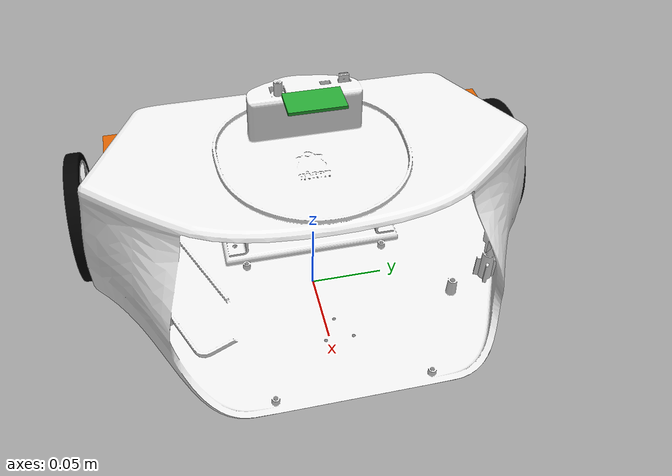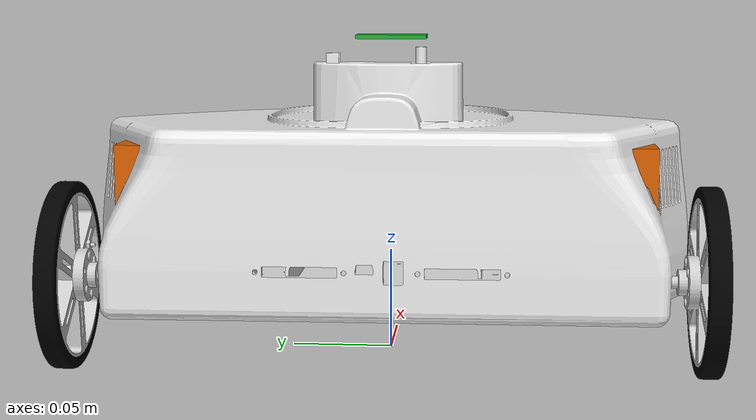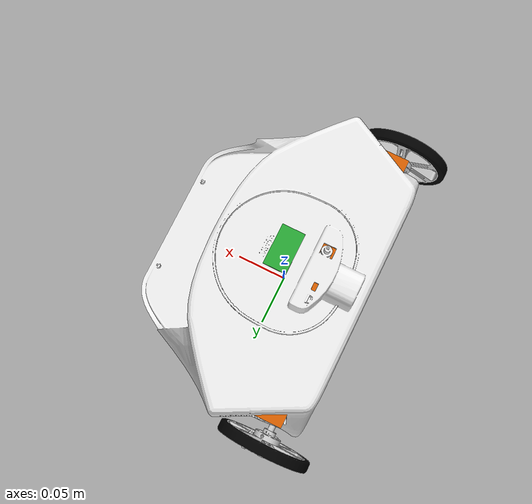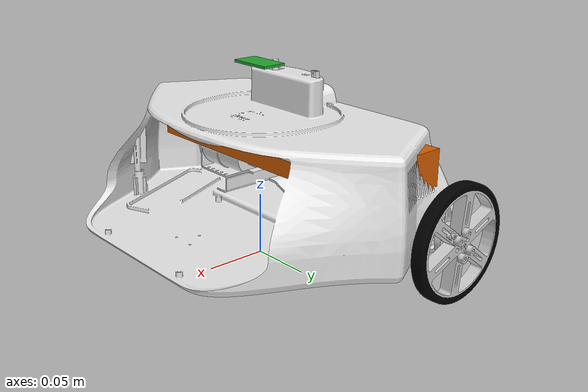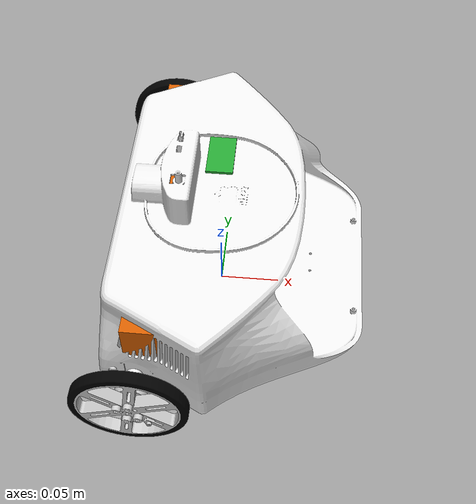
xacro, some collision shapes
<?xml version="1.0"?>

<robot name="botmovil"
    xmlns:sensor="http://playerstage.sourceforge.net/gazebo/xmlschema/#sensor"
    xmlns:controller="http://playerstage.sourceforge.net/gazebo/xmlschema/#controller"
    xmlns:interface="http://playerstage.sourceforge.net/gazebo/xmlschema/#interface">

    <!-- Included URDF Files -->
    <include filename="$(find botmovil_description)/urdf/botmovil_base.xacro" />
    <include filename="$(find botmovil_description)/urdf/botmovil_kinect_link.urdf.xacro" />

    <!-- Body of Botmovil (including sim sensors) -->
    <botmovil/>

    <!-- Kinect (includes simulation) -->
    <botmovil_kinect/>
</robot>

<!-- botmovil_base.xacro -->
<robot
    xmlns:sensor="http://playerstage.sourceforge.net/gazebo/xmlschema/#sensor"
    xmlns:controller="http://playerstage.sourceforge.net/gazebo/xmlschema/#controller"
    xmlns:interface="http://playerstage.sourceforge.net/gazebo/xmlschema/#interface">

    <!-- Included URDF Files -->
    <include filename="$(find botmovil_description)/urdf/materials.urdf.xacro" />
    <include filename="$(find botmovil_description)/urdf/botmovil_wheel.xacro" />
    <include filename="$(find botmovil_description)/urdf/gazebo.urdf.xacro"/>

    <macro name="botmovil">
        <!-- base_footprint is a fictitious link(frame) that is on the ground right below base_link origin,
             navigation stack depends on this frame -->
        <link name="base_footprint">
            <inertial>
                <mass value="0.0001" />
                <origin xyz="0 0 0" />
                <inertia ixx="0.0001" ixy="0.0" ixz="0.0"
                         iyy="0.0001" iyz="0.0"
                         izz="0.0001" />
            </inertial>

            <visual>
                <origin xyz="0 0 0" rpy="0 0 0" />
                <geometry>
                    <box size="0.001 0.001 0.001" />
                </geometry>
                <material name="Green" />
            </visual>

            <collision>
                <origin xyz="0 0 0.027615" rpy="0 0 0" />
                <geometry>
                  <box size="0.001 0.001 0.001" />
                </geometry>
            </collision>
        </link>

        <joint name="base_footprint_joint" type="fixed">
            <origin xyz="0 0 0.027615" rpy="0 0 0" />
            <parent link="base_footprint"/>
            <child link="base_link" />
        </joint>

        <!-- Links and Joints (i.e., the robot) -->
        <link name="base_link">
            <inertial>
                <mass value="1.35826" />
                <origin xyz="-0.01660 -0.00328 0.03108" />
                <inertia ixx="0.01125276766" ixy="-0.00010244389" ixz="-0.00022445513"
                         iyy="0.00458462921" iyz="0.00008426529"
                         izz="0.01359327745" />
            </inertial>

            <visual>
                <origin xyz="0 0 0" rpy="0 0 0" />
                <geometry>
                    <mesh filename="package://botmovil_description/meshes/collada/botmovil_base_link.dae"/>
                </geometry>
                <material name="White" />
            </visual>

            <collision>
                <origin xyz="0.015 0.0 0.06" rpy="0 0 0" />
                <geometry>
                    <box size="0.182 0.27 0.12"/>
                </geometry>
            </collision>
        </link>

	<!-- Components (battery, computer, controller), just visual -->
	<!-- Activate if base_link uses STL instead of .dae to improve render in rviz -->

  <joint name="front_castor_joint" type="fixed">
    <origin xyz="0.07113183 0 0" rpy="0 0 0"/>
    <parent link="base_link"/>
    <child link="front_wheel_link"/>
    <axis xyz="0 1 0"/>
  </joint>

  <link name="front_wheel_link">
    <inertial>
      <origin xyz="0 0 -0.0111444" />
      <mass value="0.0180356" />
      <inertia ixx="0.0000017" ixy="0.0" ixz="0.0"
        iyy="0.0000017" iyz="0.0" izz="0.0000016" />
    </inertial>

    <visual>
      <origin xyz="0 0 0" rpy="0 0 0"/>
      <geometry>
        <mesh filename="package://botmovil_description/meshes/collada/botmovil_caster_wheel_link.dae"/>
      </geometry>
    </visual>

    <collision>
      <origin xyz="0 0 -0.014915" rpy="0 0 0" />
      <geometry>
        <sphere radius="0.0127" />
      </geometry>
    </collision>
  </link>

        <!-- Wheels instantation -->

        <botmovil_wheel suffix="left" parent="base_link">
            <origin xyz="-0.05354817 0.15196129 0.017385" rpy="0 0 0" />
	    <origin xyz="0.0000409 -0.0014066 0.0000109"/>
	    <origin xyz="0 0 0" rpy="0 0 0" />
	    <origin xyz="0 0 0" rpy="0 1.5708 1.5708" />
        </botmovil_wheel>

        <botmovil_wheel suffix="right" parent="base_link">
            <origin xyz="-0.05354817 -0.15196129 0.017385" rpy="0 0 0" />
	    <origin xyz="0.0000409 0.0014066 0.0000109"/>
	    <origin xyz="0 0 0" rpy="3.14159 0 0" />
	    <origin xyz="0 0 0" rpy="0 1.5708 1.5708" />
        </botmovil_wheel>

    <!-- Gazebo simulated sensors -->
    <botmovil_base_gazebo />

    </macro>
</robot>

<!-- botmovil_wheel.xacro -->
<robot
    xmlns:sensor="http://playerstage.sourceforge.net/gazebo/xmlschema/#sensor"
    xmlns:controller="http://playerstage.sourceforge.net/gazebo/xmlschema/#controller"
    xmlns:interface="http://playerstage.sourceforge.net/gazebo/xmlschema/#interface">

    <macro name="botmovil_wheel" params="suffix parent *origin *origin2 *origin3 *origin4">
        <joint name="${parent}_${suffix}_wheel_joint" type="continuous">
            <insert_block name="origin" />
            <axis xyz="0 1 0" />
            <anchor xyz="0 0 0" />
            <limit effort="100" velocity="100" />
            <joint_properties damping="0.0" friction="0.0" />
            <parent link="${parent}" />
            <child link="${parent}_${suffix}_wheel_link" />
        </joint>

        <link name="${parent}_${suffix}_wheel_link">
            <inertial>
                <mass value="0.0520915" />
                <insert_block name="origin2" />
                <inertia  ixx="0.01125276766" ixy="-0.00010244389" ixz="-0.00022445513"
                          iyy="0.00458462921" iyz="0.00008426529"
                          izz="0.01359327745" />
            </inertial>

            <visual>
                <insert_block name="origin3" />
                <geometry>
                    <mesh filename="package://botmovil_description/meshes/collada/botmovil_wheel_link.dae"/>
                </geometry>
            </visual>

            <collision>
                <insert_block name="origin4" />
                <geometry>
                    <cylinder radius="0.045" length = "0.015"/>
                </geometry>
            </collision>
        </link>

        <gazebo reference="${parent}_${suffix}_wheel_link" >
            <mu1 value="100.0" />
            <mu2 value="100.0" />
            <kp  value="1000000.0" />
            <kd  value="1.0" />
        </gazebo>

        <transmission type="pr2_mechanism_model/SimpleTransmission" name="${parent}_${suffix}_wheel_trans">
            <actuator name="${parent}_${suffix}_wheel_motor" />
            <joint name="${parent}_${suffix}_wheel_joint" />
            <mechanicalReduction>1.0</mechanicalReduction>
        </transmission>
    </macro>
</robot>

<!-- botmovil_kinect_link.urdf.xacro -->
<robot xmlns:xacro="http://ros.org/wiki/xacro">
  <property name="M_PI" value="3.14159"/>

<xacro:macro name="botmovil_kinect">
  <joint name="base_camera_joint" type="fixed">
    <origin xyz="0.00134744 0 0.0630001"
            rpy="0 0 0" />
    <parent link="base_link" />
    <child link="camera_link" />
  </joint>

  <link name="camera_link">
    <inertial>
      <mass value="0.8633102" />
      <origin xyz="-0.0299525 0.0000232 -0.0064098" />
      <inertia ixx="0.0041326" ixy="0.0000006" ixz="0.0000058"
        iyy="0.0005470" iyz="0.0000002" izz="0.0041042" />
    </inertial>

    <visual>
      <origin xyz=" 0 0 0 " rpy="0 0 0" />
      <geometry>
        <mesh filename="package://botmovil_description/meshes/collada/kinect.dae"/>
      </geometry>
    </visual>

    <collision>
      <origin xyz="-0.03 0.0 0.0" rpy="0 0 0" />
      <geometry>
        <box size="0.06 .255 0.035"/>
      </geometry>
    </collision>

  </link>

  <joint name="camera_depth_joint" type="fixed">
    <origin xyz="0 0.018 0" rpy="0 0 0" />
    <parent link="camera_link" />
    <child link="camera_depth_frame" />
  </joint>

  <link name="camera_depth_frame">
    <inertial>
      <mass value="0.01" />
      <origin xyz="0 0 0" />
      <inertia ixx="0.001" ixy="0.0" ixz="0.0"
        iyy="0.001" iyz="0.0"
        izz="0.001" />
    </inertial>
  </link>

  <joint name="camera_depth_optical_joint" type="fixed">
    <origin xyz="0 0 0" rpy="${-M_PI/2} 0 ${-M_PI/2}" />
    <parent link="camera_depth_frame" />
    <child link="camera_depth_optical_frame" />
  </joint>

  <link name="camera_depth_optical_frame">
    <inertial>
      <mass value="0.001" />
      <origin xyz="0 0 0" />
      <inertia ixx="0.0001" ixy="0.0" ixz="0.0"
        iyy="0.0001" iyz="0.0"
        izz="0.0001" />
    </inertial>
  </link>

  <joint name="camera_rgb_joint" type="fixed">
    <origin xyz="0 -0.005 0" rpy="0 0 0" />
    <parent link="camera_link" />
    <child link="camera_rgb_frame" />
  </joint>

  <link name="camera_rgb_frame">
    <inertial>
      <mass value="0.001" />
      <origin xyz="0 0 0" />
      <inertia ixx="0.0001" ixy="0.0" ixz="0.0"
        iyy="0.0001" iyz="0.0"
        izz="0.0001" />
    </inertial>
  </link>

  <joint name="camera_rgb_optical_joint" type="fixed">
    <origin xyz="0 0 0" rpy="${-M_PI/2} 0 ${-M_PI/2}" />
    <parent link="camera_rgb_frame" />
    <child link="camera_rgb_optical_frame" />
  </joint>

  <link name="camera_rgb_optical_frame">
    <inertial>
      <mass value="0.001" />
      <origin xyz="0 0 0" />
      <inertia ixx="0.0001" ixy="0.0" ixz="0.0"
        iyy="0.0001" iyz="0.0"
        izz="0.0001" />
    </inertial>
  </link>

  <joint name="laser_joint" type="fixed">
    <!--origin xyz="0.00134744 0 0.0630001" rpy="0 0 0" /-->
    <origin xyz="0.00134744 0 0.13" rpy="0 0 0" />
    <parent link="base_link" />
    <child link="laser" />
  </joint>

  <link name="laser">
    <visual>
      <geometry>
        <box size="0.02 0.035 0.002" />
      </geometry>
      <material name="Green" />
    </visual>

    <inertial>
      <mass value="0.001" />
      <origin xyz="0 0 0" />
      <inertia ixx="0.0001" ixy="0.0" ixz="0.0"
        iyy="0.0001" iyz="0.0"
        izz="0.0001" />
    </inertial>
  </link>

  <!-- Kinect sensor for Gazebo simulation -->
  <botmovil_sim_kinect/>
  <botmovil_sim_laser/>

</xacro:macro>

</robot>
